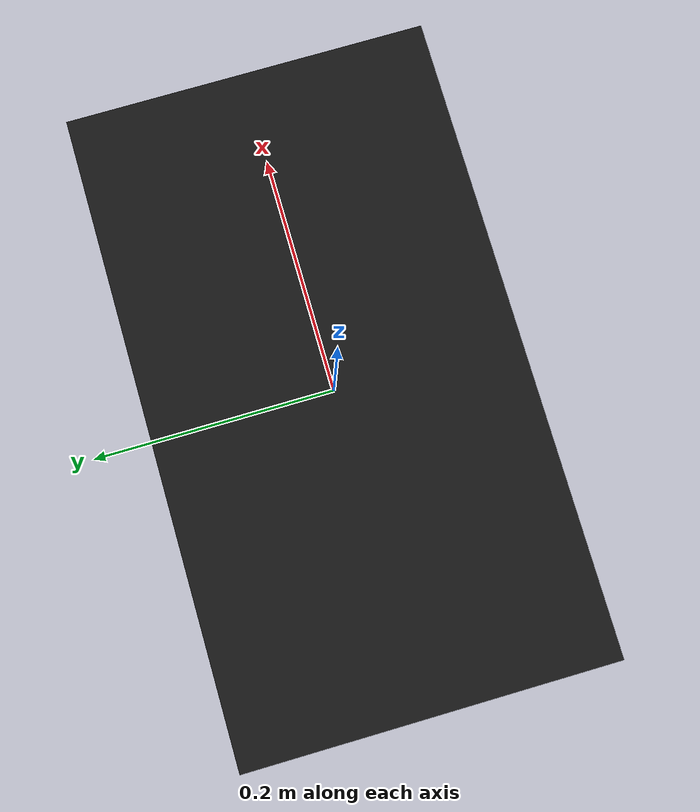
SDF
<?xml version="1.0"?>
<sdf version="1.6">
  <model name="rwc2015/old/stove">
    <link name="1_link">
      <collision name="1_col">
        <geometry>
          <box>
            <size>0.51 0.29 0.01</size>
          </box>
        </geometry>
      </collision>
      <visual name="1_vis">
        <geometry>
          <box>
            <size>0.51 0.29 0.01</size>
          </box>
        </geometry>
        <material>
          <ambient>0.1 0.1 0.1 1</ambient>
        </material>
      </visual>
      <pose>0.0 0.0 0.05 0 0 0</pose>
    </link>
    <static>true</static>
  </model>
</sdf>
